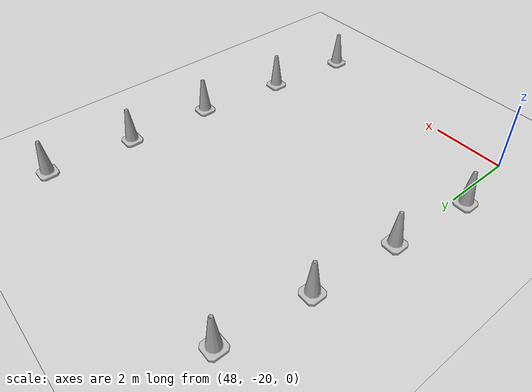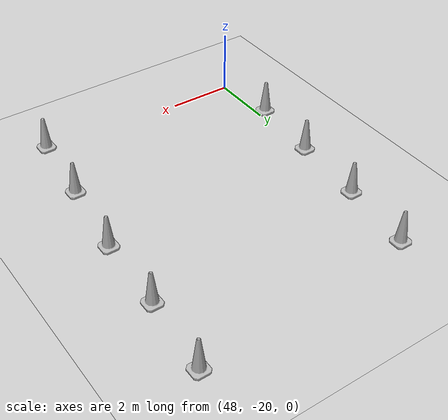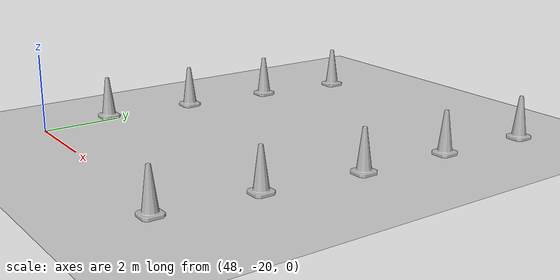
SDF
<sdf version="1.7">
 <world name="default">
  <model name="ground_plane">
   <static>1</static>
   <link name="link">
    <collision name="collision">
     <geometry><plane><normal>0 0 1</normal><size>125 125</size></plane></geometry>
     <surface>
      <contact><collide_bitmask>65535</collide_bitmask></contact>
      <friction><ode><mu>100</mu><mu2>50</mu2></ode></friction>
     </surface>
    </collision>
    <visual name="visual">
     <cast_shadows>0</cast_shadows>
     <geometry><plane><normal>0 0 1</normal><size>125 125</size></plane></geometry>
     <material>
      <script><uri>file://media/materials/scripts/gazebo.material</uri><name>Gazebo/Grey</name></script>
     </material>
    </visual>
   </link>
  </model>
  <model name="Construction Cone 233">
   <link name="link">
    <collision name="collision">
     <geometry>
      <mesh><scale>10 10 10</scale><uri>model://construction_cone/meshes/construction_cone.dae</uri></mesh>
     </geometry>
    </collision>
    <visual name="visual">
     <geometry>
      <mesh><scale>10 10 10</scale><uri>model://construction_cone/meshes/construction_cone.dae</uri></mesh>
     </geometry>
    </visual>
    <inertial>
     <inertia><ixx>1</ixx><ixy>0</ixy><ixz>0</ixz><iyy>1</iyy><iyz>0</iyz><izz>1</izz></inertia>
     <mass>1</mass>
    </inertial>
   </link>
   <pose>55.40474838119127 -10.532144172343955 0 0 0 0</pose>
  </model>
  <model name="Construction Cone 235">
   <link name="link">
    <collision name="collision">
     <geometry>
      <mesh><scale>10 10 10</scale><uri>model://construction_cone/meshes/construction_cone.dae</uri></mesh>
     </geometry>
    </collision>
    <visual name="visual">
     <geometry>
      <mesh><scale>10 10 10</scale><uri>model://construction_cone/meshes/construction_cone.dae</uri></mesh>
     </geometry>
    </visual>
    <inertial>
     <inertia><ixx>1</ixx><ixy>0</ixy><ixz>0</ixz><iyy>1</iyy><iyz>0</iyz><izz>1</izz></inertia>
     <mass>1</mass>
    </inertial>
   </link>
   <pose>48.506248381191256 -11.045144172343953 0 0 0 0</pose>
  </model>
  <model name="Construction Cone 241">
   <link name="link">
    <collision name="collision">
     <geometry>
      <mesh><scale>10 10 10</scale><uri>model://construction_cone/meshes/construction_cone.dae</uri></mesh>
     </geometry>
    </collision>
    <visual name="visual">
     <geometry>
      <mesh><scale>10 10 10</scale><uri>model://construction_cone/meshes/construction_cone.dae</uri></mesh>
     </geometry>
    </visual>
    <inertial>
     <inertia><ixx>1</ixx><ixy>0</ixy><ixz>0</ixz><iyy>1</iyy><iyz>0</iyz><izz>1</izz></inertia>
     <mass>1</mass>
    </inertial>
   </link>
   <pose>55.20224838119127 -12.923572743772525 0 0 0 0</pose>
  </model>
  <model name="Construction Cone 243">
   <link name="link">
    <collision name="collision">
     <geometry>
      <mesh><scale>10 10 10</scale><uri>model://construction_cone/meshes/construction_cone.dae</uri></mesh>
     </geometry>
    </collision>
    <visual name="visual">
     <geometry>
      <mesh><scale>10 10 10</scale><uri>model://construction_cone/meshes/construction_cone.dae</uri></mesh>
     </geometry>
    </visual>
    <inertial>
     <inertia><ixx>1</ixx><ixy>0</ixy><ixz>0</ixz><iyy>1</iyy><iyz>0</iyz><izz>1</izz></inertia>
     <mass>1</mass>
    </inertial>
   </link>
   <pose>48.204748381191266 -13.367144172343956 0 0 0 0</pose>
  </model>
  <model name="Construction Cone 252">
   <link name="link">
    <collision name="collision">
     <geometry>
      <mesh><scale>10 10 10</scale><uri>model://construction_cone/meshes/construction_cone.dae</uri></mesh>
     </geometry>
    </collision>
    <visual name="visual">
     <geometry>
      <mesh><scale>10 10 10</scale><uri>model://construction_cone/meshes/construction_cone.dae</uri></mesh>
     </geometry>
    </visual>
    <inertial>
     <inertia><ixx>1</ixx><ixy>0</ixy><ixz>0</ixz><iyy>1</iyy><iyz>0</iyz><izz>1</izz></inertia>
     <mass>1</mass>
    </inertial>
   </link>
   <pose>55.094248381191264 -15.33814417234396 0 0 0 0</pose>
  </model>
  <model name="Construction Cone 254">
   <link name="link">
    <collision name="collision">
     <geometry>
      <mesh><scale>10 10 10</scale><uri>model://construction_cone/meshes/construction_cone.dae</uri></mesh>
     </geometry>
    </collision>
    <visual name="visual">
     <geometry>
      <mesh><scale>10 10 10</scale><uri>model://construction_cone/meshes/construction_cone.dae</uri></mesh>
     </geometry>
    </visual>
    <inertial>
     <inertia><ixx>1</ixx><ixy>0</ixy><ixz>0</ixz><iyy>1</iyy><iyz>0</iyz><izz>1</izz></inertia>
     <mass>1</mass>
    </inertial>
   </link>
   <pose>47.985884744827615 -15.748053263253041 0 0 0 0</pose>
  </model>
  <model name="Construction Cone 259">
   <link name="link">
    <collision name="collision">
     <geometry>
      <mesh><scale>10 10 10</scale><uri>model://construction_cone/meshes/construction_cone.dae</uri></mesh>
     </geometry>
    </collision>
    <visual name="visual">
     <geometry>
      <mesh><scale>10 10 10</scale><uri>model://construction_cone/meshes/construction_cone.dae</uri></mesh>
     </geometry>
    </visual>
    <inertial>
     <inertia><ixx>1</ixx><ixy>0</ixy><ixz>0</ixz><iyy>1</iyy><iyz>0</iyz><izz>1</izz></inertia>
     <mass>1</mass>
    </inertial>
   </link>
   <pose>54.77024838119125 -17.876144172343956 0 0 0 0</pose>
  </model>
  <model name="Construction Cone 260">
   <link name="link">
    <collision name="collision">
     <geometry>
      <mesh><scale>10 10 10</scale><uri>model://construction_cone/meshes/construction_cone.dae</uri></mesh>
     </geometry>
    </collision>
    <visual name="visual">
     <geometry>
      <mesh><scale>10 10 10</scale><uri>model://construction_cone/meshes/construction_cone.dae</uri></mesh>
     </geometry>
    </visual>
    <inertial>
     <inertia><ixx>1</ixx><ixy>0</ixy><ixz>0</ixz><iyy>1</iyy><iyz>0</iyz><izz>1</izz></inertia>
     <mass>1</mass>
    </inertial>
   </link>
   <pose>47.72815747210035 -18.10441689961668 0 0 0 0</pose>
  </model>
  <model name="Construction Cone 263">
   <link name="link">
    <collision name="collision">
     <geometry>
      <mesh><scale>10 10 10</scale><uri>model://construction_cone/meshes/construction_cone.dae</uri></mesh>
     </geometry>
    </collision>
    <visual name="visual">
     <geometry>
      <mesh><scale>10 10 10</scale><uri>model://construction_cone/meshes/construction_cone.dae</uri></mesh>
     </geometry>
    </visual>
    <inertial>
     <inertia><ixx>1</ixx><ixy>0</ixy><ixz>0</ixz><iyy>1</iyy><iyz>0</iyz><izz>1</izz></inertia>
     <mass>1</mass>
    </inertial>
   </link>
   <pose>54.498319809762705 -20.319644172343956 0 0 0 0</pose>
  </model>
 </world>
</sdf>
